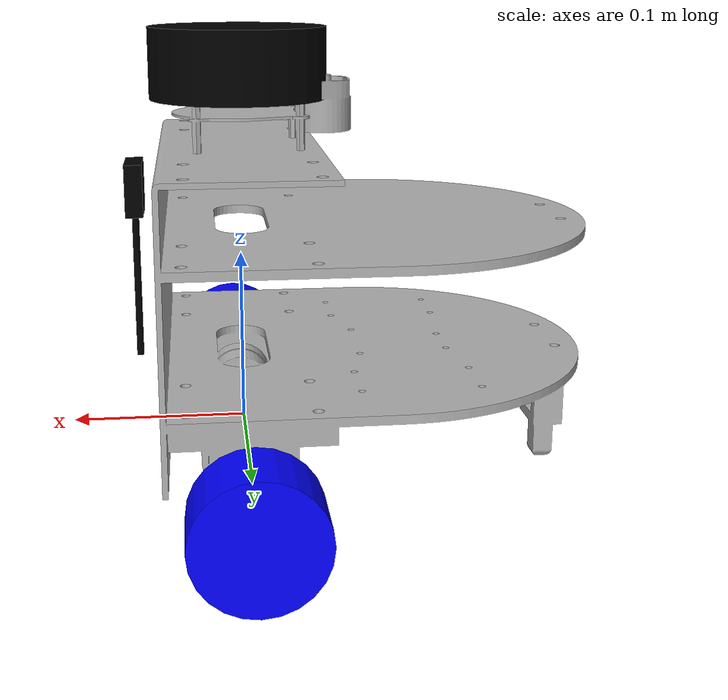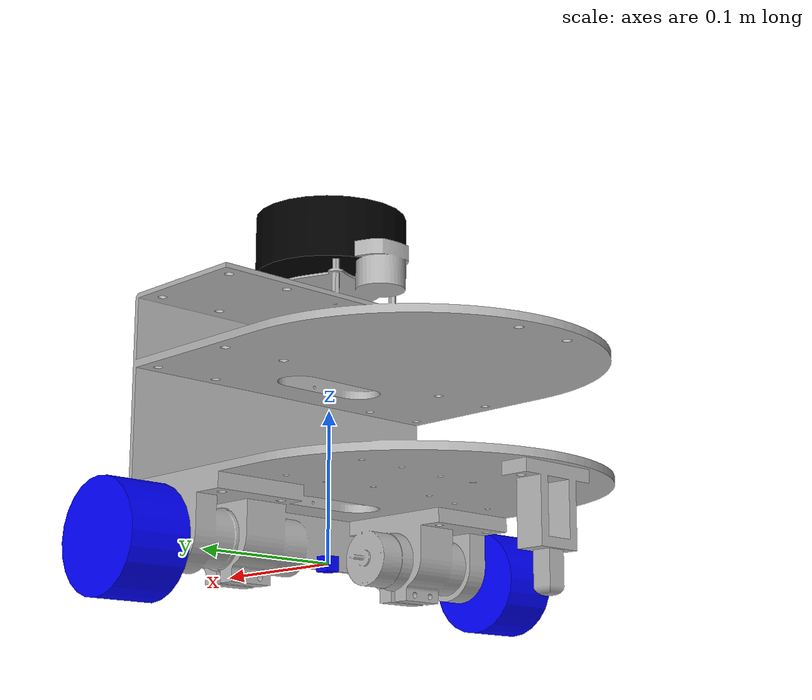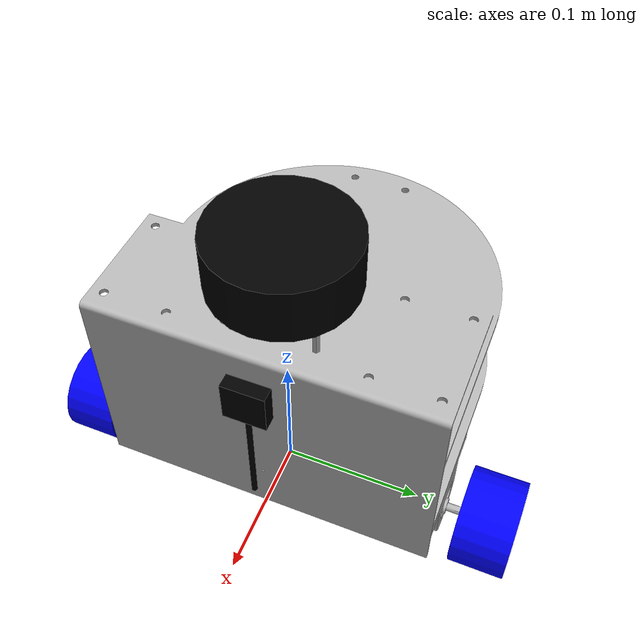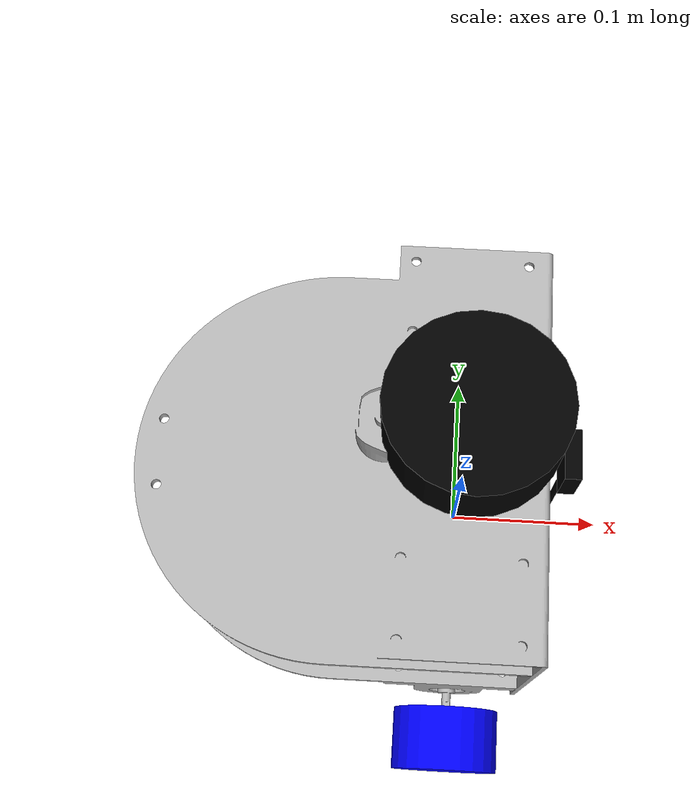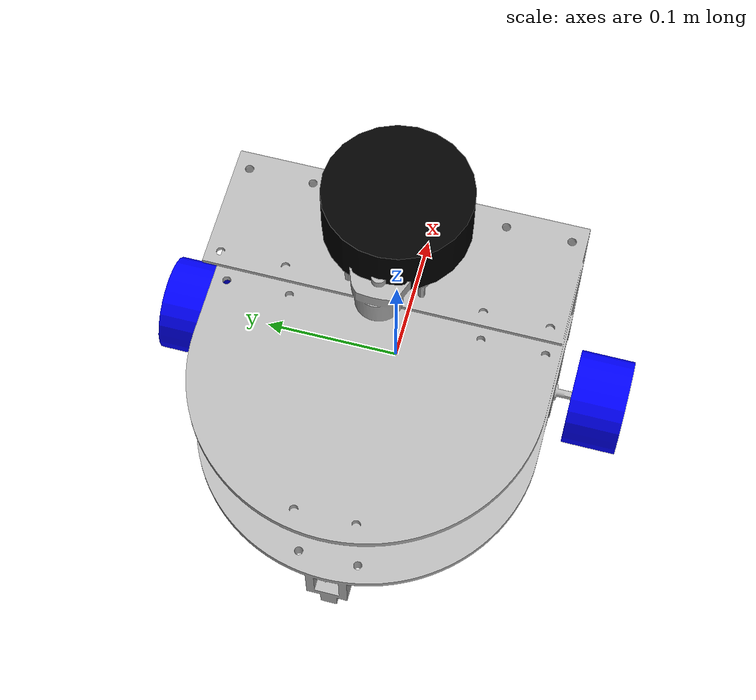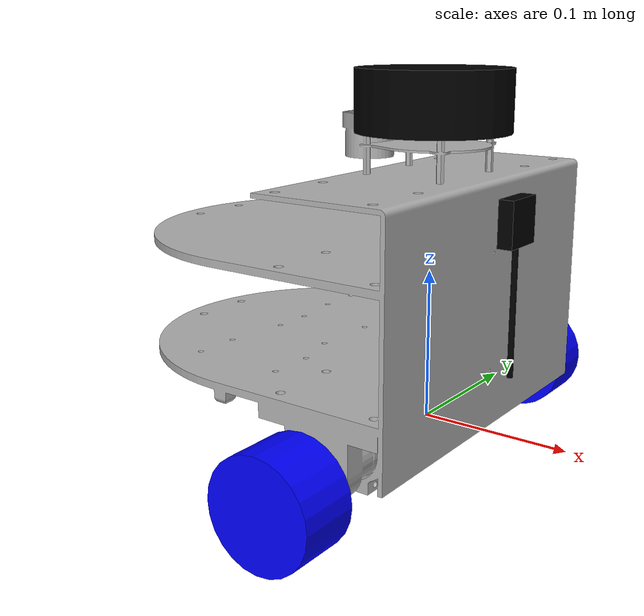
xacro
<?xml version="1.0" ?>
<robot name="rina" xmlns:xacro="http://www.ros.org/wiki/xacro" >

    <xacro:arg name="use_ros2_control" default="true"/>
    <xacro:arg name="sim_mode" default="false"/>

    <xacro:include filename="$(find robot)/urdf/inertial_macros.xacro" />
    <xacro:include filename="$(find robot)/urdf/robot.urdf.xacro" />
    <xacro:include filename="$(find robot)/urdf/sensors/lidar.xacro" />
    <xacro:include filename="$(find robot)/urdf/sensors/camera.xacro" />
    <xacro:include filename="$(find robot)/urdf/sensors/imu.xacro" />
    <xacro:include filename="$(find robot)/urdf/sensors/gps.xacro" />

    <xacro:if value="$(arg use_ros2_control)">
        <xacro:include filename="$(find robot)/urdf/control/ros2_control.xacro" />
    </xacro:if>
    <xacro:unless value="$(arg use_ros2_control)">
    <xacro:include filename="$(find robot)/urdf/control/gazebo_control.xacro" />
    </xacro:unless>

</robot>

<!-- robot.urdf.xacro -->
<robot name="ros" xmlns:xacro="http://www.ros.org/wiki/xacro">

<xacro:include filename="$(find robot)/urdf/materials.xacro" />
<xacro:include filename="$(find robot)/urdf/properties.xacro" />

<link name="base_footprint">

</link>

<joint name="footprint_joint" type="fixed">
  <child link="base_footprint"/>
  <parent link="base_link"/>
  <origin xyz="0.0 0.0 -0.035" rpy="0.0 0.0 0.0"/>
</joint>

<link name="base_link">
  <inertial>
    <origin xyz="-0.028662948158421374 -9.161384338691405e-07 0.07830072749629308" rpy="0 0 0"/>
    <mass value="1.4490433383590837"/>
    <inertia ixx="0.013382" iyy="0.012" izz="0.01271" ixy="-0.0" iyz="-0.0" ixz="-0.000167"/>
  </inertial>
  <visual>
    <origin xyz="0 0 0" rpy="0 0 0"/>
    <geometry>
      <mesh filename="file://$(find robot)/meshes/base_link.stl" scale="0.001 0.001 0.001"/>
    </geometry>
    <material name="plastic_glossy_grey"/>
  </visual>
  <collision>
    <origin xyz="0 0 0" rpy="0 0 0"/>
    <geometry>
      <mesh filename="file://$(find robot)/meshes/base_link.stl" scale="0.001 0.001 0.001"/>
    </geometry>
  </collision>
</link>

<xacro:property name="wheel_radius" value="0.035"/>
<xacro:property name="wheel_thickness" value="0.04"/>
<xacro:property name="wheel_mass" value="1.0"/>
<xacro:property name="wheel_offset_y" value="0.155"/>

<link name="left_wheel">
    <visual>
        <geometry>
            <cylinder radius="${wheel_radius}" length="${wheel_thickness}"/>
        </geometry>
        <material name="blue"/>
        <origin xyz="0 0 0" rpy="0 0 0"/>
    </visual>
    <collision>
        <geometry>
            <sphere radius="${wheel_radius}"/>
        </geometry>
    </collision>
    <xacro:inertial_cylinder mass="${wheel_mass}" length="${wheel_thickness}" radius="${wheel_radius}">
        <origin xyz="0 0 0" rpy="0 0 0"/>
    </xacro:inertial_cylinder>
</link>

<link name="right_wheel">
    <visual>
        <geometry>
            <cylinder radius="${wheel_radius}" length="${wheel_thickness}"/>
        </geometry>
        <material name="blue"/>
    </visual>
    <collision>
        <geometry>
            <sphere radius="${wheel_radius}"/>
        </geometry>
    </collision>
    <xacro:inertial_cylinder mass="${wheel_mass}" length="${wheel_thickness}" radius="${wheel_radius}">
        <origin xyz="0 0 0" rpy="0 0 0"/>
    </xacro:inertial_cylinder>
</link>

<!-- counter weight is invisible -->
<link name="counter_weight">
    <collision>
        <geometry>
            <box size="0.03 0.04 0.05"/>
        </geometry>
    </collision>
    <xacro:inertial_box mass="1.0" x="0.03" y="0.04" z="0.05">
      <origin xyz="${0.03/2} 0 ${0.05/2}" rpy="0 0 0"/>
    </xacro:inertial_box>
</link>

<joint name="left_wheel_joint" type="continuous">
    <parent link="base_link"/>
    <child link="left_wheel"/>
    <origin xyz="0 ${wheel_offset_y} 0" rpy="-${pi/2} 0 0" />
    <axis xyz="0 0 1"/>
</joint>

<joint name="right_wheel_joint" type="continuous">
    <parent link="base_link"/>
    <child link="right_wheel"/>
    <origin xyz="0 ${-wheel_offset_y} 0" rpy="${pi/2} 0 0" />
    <axis xyz="0 0 -1"/>
</joint>

<joint name="counter_joint" type="fixed">
  <origin xyz="-0.17 0.0 0.071" rpy="0.0 0.0 0.0"/>
  <parent link="base_link"/>
  <child link="counter_weight"/>
</joint>

</robot>

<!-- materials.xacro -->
<robot xmlns:xacro="http://www.ros.org/wiki/xacro" >

<material name="silver_default">
  <color rgba="0.700 0.700 0.700 1.000"/>
</material>

<material name="rubber_soft">
  <color rgba="0.15294117647058825 0.15294117647058825 0.15294117647058825 1.0"/>
</material>

<material name="plastic_glossy_grey">
  <color rgba="0.7019607843137254 0.7019607843137254 0.7019607843137254 1.0"/>
</material>

<material name="silver">
  <color rgba="0.700 0.700 0.700 1.000"/>
</material>

<material name="black">
  <color rgba="0 0 0 1"/>
</material>

<material name="white">
  <color rgba="1 1 1 1"/>
</material>

<material name="red">
  <color rgba="1 0 0 1"/>
</material>

<material name="green">
  <color rgba="0 1 0 1"/>
</material>

<material name="blue">
  <color rgba="0 0 1 1"/>
</material>

</robot>

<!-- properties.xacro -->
<robot name="ros" xmlns:xacro="http://www.ros.org/wiki/xacro" >

<xacro:property name="body_color" value="Gazebo/Grey" />

<gazebo reference="base_link">
  <material>${body_color}</material>
</gazebo>

<gazebo reference="left_wheel_1">
  <material>${body_color}</material>
  <mu1>0.2</mu1>
  <mu2>0.2</mu2>
</gazebo>

<gazebo reference="right_wheel_1">
  <material>${body_color}</material>
  <mu1>0.2</mu1>
  <mu2>0.2</mu2>
</gazebo>

<gazebo reference="laser_frame">
  <material>Gazebo/Black</material>
</gazebo>

</robot>

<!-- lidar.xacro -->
<robot xmlns:xacro="http://www.ros.org/wiki/xacro">

<joint name="laser_joint" type="fixed">
    <parent link="base_link"/>
    <child link="laser_frame"/>
    <origin xyz="0.00 0 0.21" rpy="0 0 0"/>
</joint>

<link name="laser_frame">
    <visual>
        <geometry>
            <cylinder radius="0.05" length="0.04"/>
        </geometry>
        <material name="black"/>
    </visual>
    <collision>
        <geometry>
            <cylinder radius="0.05" length="0.04"/>
        </geometry>
    </collision>
    <xacro:inertial_cylinder mass="0.05" length="0.03" radius="0.04">
        <origin xyz="0 0 0" rpy="0 0 0"/>
    </xacro:inertial_cylinder>
</link>

<gazebo reference="laser_frame">
    <material>Gazebo/Black</material>

    <sensor name="laser" type="ray">
        <pose> 0 0 0 0 0 0 </pose>
        <visualize>false</visualize>
        <update_rate>10</update_rate>
        <ray>
            <scan>
                <horizontal>
                    <samples>360</samples>
                    <min_angle>-3.14</min_angle>
                    <max_angle>3.14</max_angle>
                </horizontal>
            </scan>
            <range>
                <min>0.3</min>
                <max>12</max>
            </range>
        </ray>
        <plugin name="laser_controller" filename="libgazebo_ros_ray_sensor.so">
            <ros>
                <remapping>~/out:=scan</remapping>
            </ros>
            <output_type>sensor_msgs/LaserScan</output_type>
            <frame_name>laser_frame</frame_name>
        </plugin>
    </sensor>
</gazebo>

</robot>

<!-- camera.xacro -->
<robot xmlns:xacro="http://www.ros.org/wiki/xacro" >

    <joint name="camera_joint" type="fixed">
        <parent link="base_link"/>
        <child link="camera_link"/>
        <origin xyz="0.06 0 0.14" rpy="0 0 0"/>
    </joint>

    <link name="camera_link">
        <visual>
            <geometry>
                <box size="0.010 0.03 0.03"/>
            </geometry>
            <material name="black"/>
        </visual>
        <visual>
            <origin xyz="0 0 -0.05"/>
            <geometry>
                <cylinder radius="0.002" length="0.1"/>
            </geometry>
            <material name="black"/>
        </visual>
    </link>

    <joint name="camera_optical_joint" type="fixed">
        <parent link="camera_link"/>
        <child link="camera_link_optical"/>
        <origin xyz="0 0 0" rpy="${-pi/2} 0 ${-pi/2}"/>
    </joint>

    <link name="camera_link_optical"></link>

    <gazebo reference="camera_link">
        <material>Gazebo/Black</material>

        <sensor name="camera" type="camera">
            <pose> 0 0 0 0 0 0 </pose>
            <visualize>true</visualize>
            <update_rate>10</update_rate>
            <camera>
                <horizontal_fov>1.089</horizontal_fov>
                <image>
                    <format>R8G8B8</format>
                    <width>640</width>
                    <height>480</height>
                </image>
                <clip>
                    <near>0.05</near>
                    <far>8.0</far>
                </clip>
            </camera>
            <plugin name="camera_controller" filename="libgazebo_ros_camera.so">
                <frame_name>camera_link_optical</frame_name>
            </plugin>
        </sensor>
    </gazebo>

</robot>

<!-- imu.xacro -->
<robot xmlns:xacro="http://www.ros.org/wiki/xacro" >

<joint name="imu_joint" type="fixed">
    <parent link="base_link"/>
    <child link="imu_link"/>
    <origin xyz="0.0 0 0.0" rpy="0 0 0"/>
</joint>

<link name="imu_link">
    <visual>
        <geometry>
            <box size="0.01 0.01 0.01"/>
        </geometry>
        <material name="blue"/>
    </visual>
    <collision>
        <geometry>
            <box size="0.01 0.01 0.01"/>
        </geometry>
    </collision>
    <xacro:inertial_box mass="0.05" x="0.01" y="0.01" z="0.01">
      <origin xyz="${0.01/2} 0 ${0.01/2}" rpy="0 0 0"/>
    </xacro:inertial_box>
</link>

<gazebo reference="imu_link">
    <material>Gazebo/Black</material>
    <!-- Will only run in Gazebo, make sure to put spherical data in Gazebo World file -->
    <sensor name="imu_sensor" type="imu">
        <!-- ensure the sensor is active (required) -->
        <always_on>true</always_on>
        <update_rate>30</update_rate>
        <imu>
          <angular_velocity>
            <x>
              <noise type="gaussian">
                <mean>0.0</mean>
                <stddev>2e-4</stddev>
                <bias_mean>0.0000075</bias_mean>
                <bias_stddev>0.0000008</bias_stddev>
              </noise>
            </x>
            <y>
              <noise type="gaussian">
                <mean>0.0</mean>
                <stddev>2e-4</stddev>
                <bias_mean>0.0000075</bias_mean>
                <bias_stddev>0.0000008</bias_stddev>
              </noise>
            </y>
            <z>
              <noise type="gaussian">
                <mean>0.0</mean>
                <stddev>2e-4</stddev>
                <bias_mean>0.0000075</bias_mean>
                <bias_stddev>0.0000008</bias_stddev>
              </noise>
            </z>
          </angular_velocity>
          <linear_acceleration>
            <x>
              <noise type="gaussian">
                <mean>0.0</mean>
                <stddev>1.7e-2</stddev>
                <bias_mean>0.1</bias_mean>
                <bias_stddev>0.001</bias_stddev>
              </noise>
            </x>
            <y>
              <noise type="gaussian">
                <mean>0.0</mean>
                <stddev>1.7e-2</stddev>
                <bias_mean>0.1</bias_mean>
                <bias_stddev>0.001</bias_stddev>
              </noise>
            </y>
            <z>
              <noise type="gaussian">
                <mean>0.0</mean>
                <stddev>1.7e-2</stddev>
                <bias_mean>0.1</bias_mean>
                <bias_stddev>0.001</bias_stddev>
              </noise>
            </z>
          </linear_acceleration>
        </imu>
        <plugin name="imu_plugin" filename="libgazebo_ros_imu_sensor.so">
            <ros>
                <!-- publish to /imu/data -->
                <namespace>/imu</namespace>
                <remapping>~/out:=data</remapping>
            </ros>
            <frame_name>laser_frame</frame_name>
        </plugin>
    </sensor>
</gazebo>

</robot>

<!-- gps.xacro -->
<robot xmlns:xacro="http://www.ros.org/wiki/xacro" >

<joint name="gps_joint" type="fixed">
    <parent link="base_link"/>
    <child link="gps_link"/>
    <origin xyz="0.0 0 0.0" rpy="0 0 0"/>
</joint>

<link name="gps_link">
    <visual>
        <geometry>
            <box size="0.01 0.01 0.01"/>
        </geometry>
        <material name="blue"/>
    </visual>
    <collision>
        <geometry>
            <box size="0.01 0.01 0.01"/>
        </geometry>
    </collision>
    <xacro:inertial_box mass="0.05" x="0.01" y="0.01" z="0.01">
      <origin xyz="${0.01/2} 0 ${0.01/2}" rpy="0 0 0"/>
    </xacro:inertial_box>
</link>

<gazebo reference="gps_link">

    <material>Gazebo/Black</material>

    <sensor name="bmb_gps" type="gps">
      <always_on>true</always_on>
      <update_rate>10.0</update_rate>
      <gps>
        <position_sensing>
          <horizontal>
            <noise type="gaussian">
              <mean>0.0</mean>
              <stddev>1e-2</stddev>
            </noise>
          </horizontal>
          <vertical>
            <noise type="gaussian">
              <mean>0.0</mean>
              <stddev>1</stddev>
            </noise>
          </vertical>
        </position_sensing>
      </gps>
      <plugin name="basic_mobile_bot_gps" filename="libgazebo_ros_gps_sensor.so">
        <ros>
          <remapping>~/out:=gps/fix</remapping>
        </ros>
      </plugin>
    </sensor>

</gazebo>

</robot>
